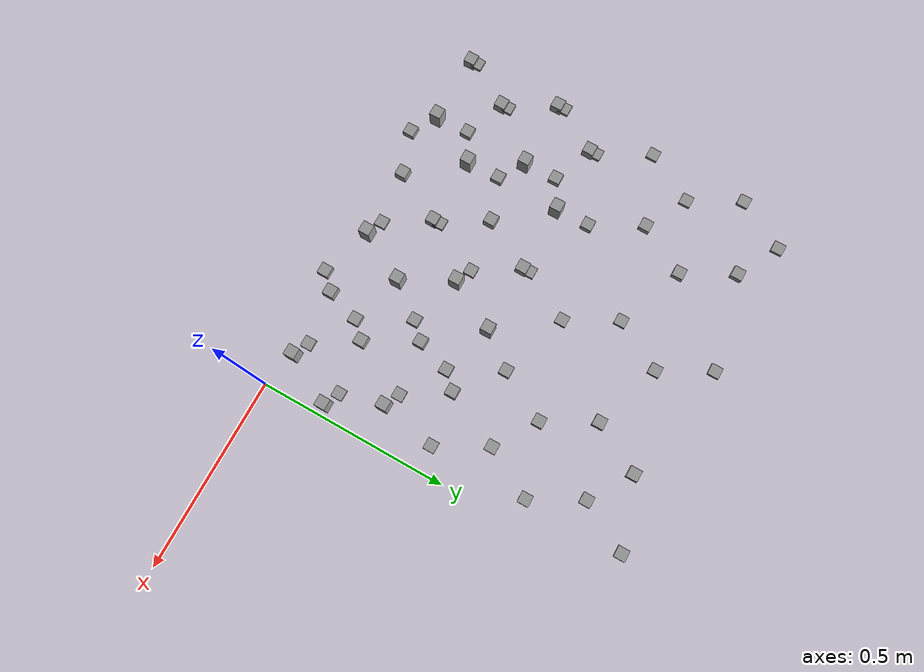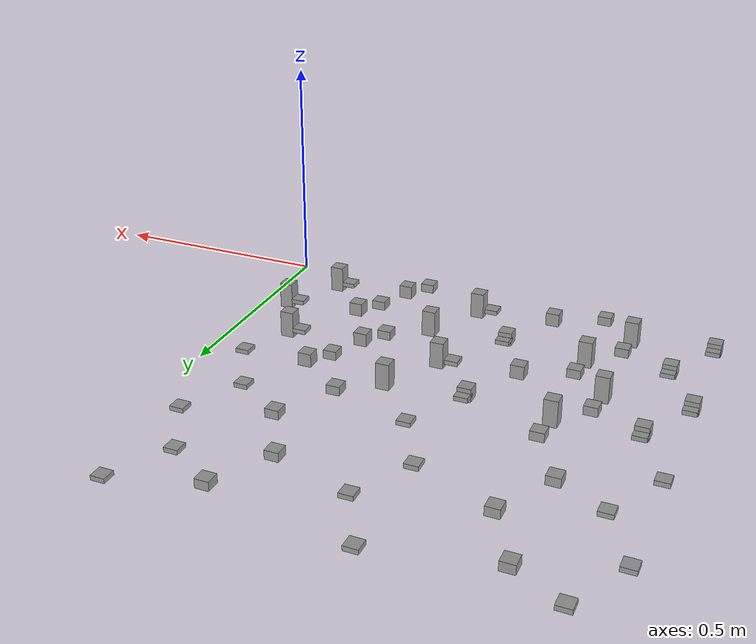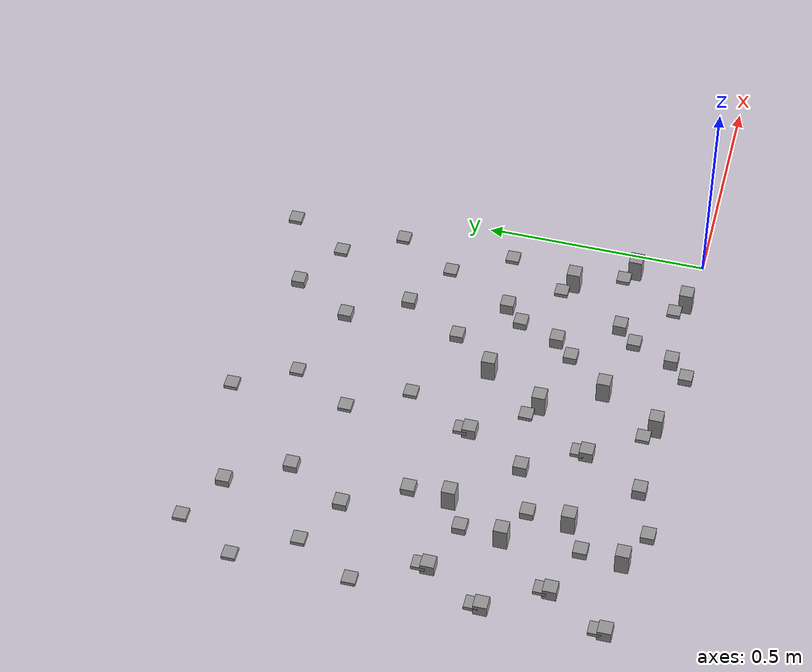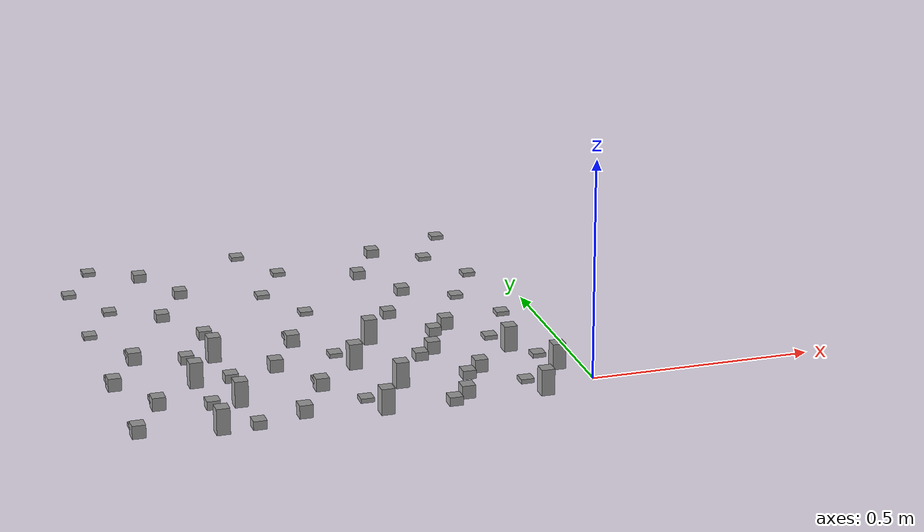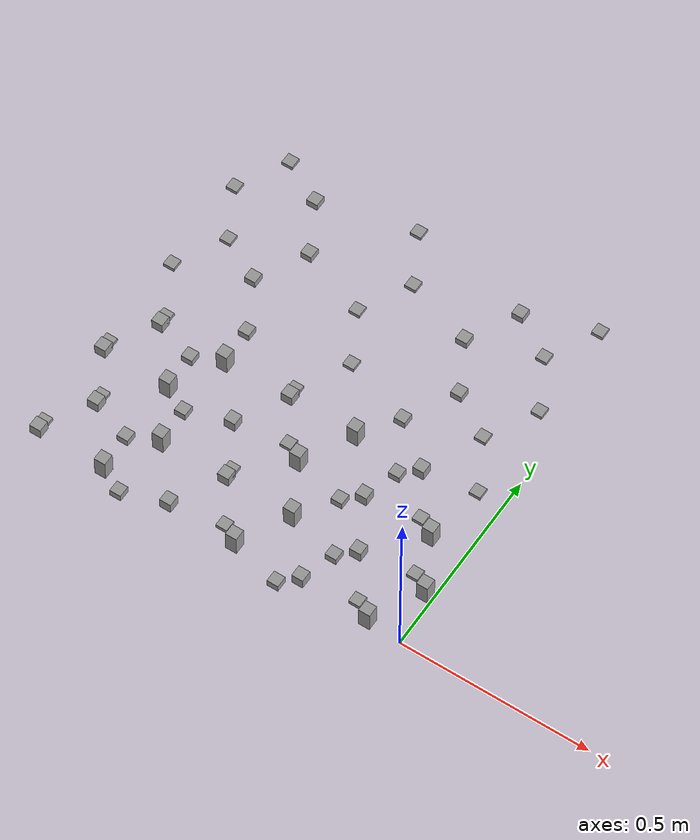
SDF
<sdf version="1.5">
 <world name="default">
  <model name="unit_box_4">
   <pose>-1 0.02 0 0 0 0</pose>
   <link name="link">
    <inertial>
     <mass>1</mass>
     <inertia><ixx>0</ixx><ixy>0</ixy><ixz>0</ixz><iyy>0</iyy><iyz>0</iyz><izz>0</izz></inertia>
    </inertial>
    <collision name="collision"><geometry><box><size>0.03 0.03 0.03</size></box></geometry></collision>
    <visual name="visual">
     <geometry><box><size>0.03 0.03 0.03</size></box></geometry>
     <material>
      <script><name>Gazebo/Grey</name><uri>file://media/materials/scripts/gazebo.material</uri></script>
     </material>
    </visual>
   </link>
  </model>
  <model name="unit_box_5">
   <pose>-0.93 0.15 0 0 0 0</pose>
   <link name="link">
    <inertial>
     <mass>1</mass>
     <inertia><ixx>0</ixx><ixy>0</ixy><ixz>0</ixz><iyy>0</iyy><iyz>0</iyz><izz>0</izz></inertia>
    </inertial>
    <collision name="collision"><geometry><box><size>0.03 0.03 0.03</size></box></geometry></collision>
    <visual name="visual">
     <geometry><box><size>0.03 0.03 0.03</size></box></geometry>
     <material>
      <script><name>Gazebo/Grey</name><uri>file://media/materials/scripts/gazebo.material</uri></script>
     </material>
    </visual>
   </link>
  </model>
  <model name="unit_box_6">
   <pose>-1 0.28 0 0 0 0</pose>
   <link name="link">
    <inertial>
     <mass>1</mass>
     <inertia><ixx>0</ixx><ixy>0</ixy><ixz>0</ixz><iyy>0</iyy><iyz>0</iyz><izz>0</izz></inertia>
    </inertial>
    <collision name="collision"><geometry><box><size>0.03 0.03 0.03</size></box></geometry></collision>
    <visual name="visual">
     <geometry><box><size>0.03 0.03 0.03</size></box></geometry>
     <material>
      <script><name>Gazebo/Grey</name><uri>file://media/materials/scripts/gazebo.material</uri></script>
     </material>
    </visual>
   </link>
  </model>
  <model name="unit_box_7">
   <pose>-0.93 0.41 0 0 0 0</pose>
   <link name="link">
    <inertial>
     <mass>1</mass>
     <inertia><ixx>0</ixx><ixy>0</ixy><ixz>0</ixz><iyy>0</iyy><iyz>0</iyz><izz>0</izz></inertia>
    </inertial>
    <collision name="collision"><geometry><box><size>0.03 0.03 0.03</size></box></geometry></collision>
    <visual name="visual">
     <geometry><box><size>0.03 0.03 0.03</size></box></geometry>
     <material>
      <script><name>Gazebo/Grey</name><uri>file://media/materials/scripts/gazebo.material</uri></script>
     </material>
    </visual>
   </link>
  </model>
  <model name="unit_box_12">
   <pose>-0.82 0.02 0 0 0 0</pose>
   <link name="link">
    <inertial>
     <mass>1</mass>
     <inertia><ixx>0</ixx><ixy>0</ixy><ixz>0</ixz><iyy>0</iyy><iyz>0</iyz><izz>0</izz></inertia>
    </inertial>
    <collision name="collision"><geometry><box><size>0.03 0.03 0.06</size></box></geometry></collision>
    <visual name="visual">
     <geometry><box><size>0.03 0.03 0.06</size></box></geometry>
     <material>
      <script><name>Gazebo/Grey</name><uri>file://media/materials/scripts/gazebo.material</uri></script>
     </material>
    </visual>
   </link>
  </model>
  <model name="unit_box_13">
   <pose>-0.75 0.15 0 0 0 0</pose>
   <link name="link">
    <inertial>
     <mass>1</mass>
     <inertia><ixx>0</ixx><ixy>0</ixy><ixz>0</ixz><iyy>0</iyy><iyz>0</iyz><izz>0</izz></inertia>
    </inertial>
    <collision name="collision"><geometry><box><size>0.03 0.03 0.06</size></box></geometry></collision>
    <visual name="visual">
     <geometry><box><size>0.03 0.03 0.06</size></box></geometry>
     <material>
      <script><name>Gazebo/Grey</name><uri>file://media/materials/scripts/gazebo.material</uri></script>
     </material>
    </visual>
   </link>
  </model>
  <model name="unit_box_14">
   <pose>-0.82 0.28 0 0 0 0</pose>
   <link name="link">
    <inertial>
     <mass>1</mass>
     <inertia><ixx>0</ixx><ixy>0</ixy><ixz>0</ixz><iyy>0</iyy><iyz>0</iyz><izz>0</izz></inertia>
    </inertial>
    <collision name="collision"><geometry><box><size>0.03 0.03 0.06</size></box></geometry></collision>
    <visual name="visual">
     <geometry><box><size>0.03 0.03 0.06</size></box></geometry>
     <material>
      <script><name>Gazebo/Grey</name><uri>file://media/materials/scripts/gazebo.material</uri></script>
     </material>
    </visual>
   </link>
  </model>
  <model name="unit_box_15">
   <pose>-0.75 0.41 0 0 0 0</pose>
   <link name="link">
    <inertial>
     <mass>1</mass>
     <inertia><ixx>0</ixx><ixy>0</ixy><ixz>0</ixz><iyy>0</iyy><iyz>0</iyz><izz>0</izz></inertia>
    </inertial>
    <collision name="collision"><geometry><box><size>0.03 0.03 0.06</size></box></geometry></collision>
    <visual name="visual">
     <geometry><box><size>0.03 0.03 0.06</size></box></geometry>
     <material>
      <script><name>Gazebo/Grey</name><uri>file://media/materials/scripts/gazebo.material</uri></script>
     </material>
    </visual>
   </link>
  </model>
  <model name="unit_box_20">
   <pose>-0.64 0.02 0 0 0 0</pose>
   <link name="link">
    <inertial>
     <mass>1</mass>
     <inertia><ixx>0</ixx><ixy>0</ixy><ixz>0</ixz><iyy>0</iyy><iyz>0</iyz><izz>0</izz></inertia>
    </inertial>
    <collision name="collision"><geometry><box><size>0.03 0.03 0.03</size></box></geometry></collision>
    <visual name="visual">
     <geometry><box><size>0.03 0.03 0.03</size></box></geometry>
     <material>
      <script><name>Gazebo/Grey</name><uri>file://media/materials/scripts/gazebo.material</uri></script>
     </material>
    </visual>
   </link>
  </model>
  <model name="unit_box_21">
   <pose>-0.57 0.15 0 0 0 0</pose>
   <link name="link">
    <inertial>
     <mass>1</mass>
     <inertia><ixx>0</ixx><ixy>0</ixy><ixz>0</ixz><iyy>0</iyy><iyz>0</iyz><izz>0</izz></inertia>
    </inertial>
    <collision name="collision"><geometry><box><size>0.03 0.03 0.03</size></box></geometry></collision>
    <visual name="visual">
     <geometry><box><size>0.03 0.03 0.03</size></box></geometry>
     <material>
      <script><name>Gazebo/Grey</name><uri>file://media/materials/scripts/gazebo.material</uri></script>
     </material>
    </visual>
   </link>
  </model>
  <model name="unit_box_22">
   <pose>-0.64 0.28 0 0 0 0</pose>
   <link name="link">
    <inertial>
     <mass>1</mass>
     <inertia><ixx>0</ixx><ixy>0</ixy><ixz>0</ixz><iyy>0</iyy><iyz>0</iyz><izz>0</izz></inertia>
    </inertial>
    <collision name="collision"><geometry><box><size>0.03 0.03 0.03</size></box></geometry></collision>
    <visual name="visual">
     <geometry><box><size>0.03 0.03 0.03</size></box></geometry>
     <material>
      <script><name>Gazebo/Grey</name><uri>file://media/materials/scripts/gazebo.material</uri></script>
     </material>
    </visual>
   </link>
  </model>
  <model name="unit_box_23">
   <pose>-0.57 0.41 0 0 0 0</pose>
   <link name="link">
    <inertial>
     <mass>1</mass>
     <inertia><ixx>0</ixx><ixy>0</ixy><ixz>0</ixz><iyy>0</iyy><iyz>0</iyz><izz>0</izz></inertia>
    </inertial>
    <collision name="collision"><geometry><box><size>0.03 0.03 0.03</size></box></geometry></collision>
    <visual name="visual">
     <geometry><box><size>0.03 0.03 0.03</size></box></geometry>
     <material>
      <script><name>Gazebo/Grey</name><uri>file://media/materials/scripts/gazebo.material</uri></script>
     </material>
    </visual>
   </link>
  </model>
  <model name="unit_box_28">
   <pose>-0.46 0.02 0 0 0 0</pose>
   <link name="link">
    <inertial>
     <mass>1</mass>
     <inertia><ixx>0</ixx><ixy>0</ixy><ixz>0</ixz><iyy>0</iyy><iyz>0</iyz><izz>0</izz></inertia>
    </inertial>
    <collision name="collision"><geometry><box><size>0.03 0.03 0.06</size></box></geometry></collision>
    <visual name="visual">
     <geometry><box><size>0.03 0.03 0.06</size></box></geometry>
     <material>
      <script><name>Gazebo/Grey</name><uri>file://media/materials/scripts/gazebo.material</uri></script>
     </material>
    </visual>
   </link>
  </model>
  <model name="unit_box_29">
   <pose>-0.39 0.15 0 0 0 0</pose>
   <link name="link">
    <inertial>
     <mass>1</mass>
     <inertia><ixx>0</ixx><ixy>0</ixy><ixz>0</ixz><iyy>0</iyy><iyz>0</iyz><izz>0</izz></inertia>
    </inertial>
    <collision name="collision"><geometry><box><size>0.03 0.03 0.06</size></box></geometry></collision>
    <visual name="visual">
     <geometry><box><size>0.03 0.03 0.06</size></box></geometry>
     <material>
      <script><name>Gazebo/Grey</name><uri>file://media/materials/scripts/gazebo.material</uri></script>
     </material>
    </visual>
   </link>
  </model>
  <model name="unit_box_30">
   <pose>-0.46 0.28 0 0 0 0</pose>
   <link name="link">
    <inertial>
     <mass>1</mass>
     <inertia><ixx>0</ixx><ixy>0</ixy><ixz>0</ixz><iyy>0</iyy><iyz>0</iyz><izz>0</izz></inertia>
    </inertial>
    <collision name="collision"><geometry><box><size>0.03 0.03 0.06</size></box></geometry></collision>
    <visual name="visual">
     <geometry><box><size>0.03 0.03 0.06</size></box></geometry>
     <material>
      <script><name>Gazebo/Grey</name><uri>file://media/materials/scripts/gazebo.material</uri></script>
     </material>
    </visual>
   </link>
  </model>
  <model name="unit_box_31">
   <pose>-0.39 0.41 0 0 0 0</pose>
   <link name="link">
    <inertial>
     <mass>1</mass>
     <inertia><ixx>0</ixx><ixy>0</ixy><ixz>0</ixz><iyy>0</iyy><iyz>0</iyz><izz>0</izz></inertia>
    </inertial>
    <collision name="collision"><geometry><box><size>0.03 0.03 0.06</size></box></geometry></collision>
    <visual name="visual">
     <geometry><box><size>0.03 0.03 0.06</size></box></geometry>
     <material>
      <script><name>Gazebo/Grey</name><uri>file://media/materials/scripts/gazebo.material</uri></script>
     </material>
    </visual>
   </link>
  </model>
  <model name="unit_box_36">
   <pose>-0.28 0.02 0 0 0 0</pose>
   <link name="link">
    <inertial>
     <mass>1</mass>
     <inertia><ixx>0</ixx><ixy>0</ixy><ixz>0</ixz><iyy>0</iyy><iyz>0</iyz><izz>0</izz></inertia>
    </inertial>
    <collision name="collision"><geometry><box><size>0.03 0.03 0.03</size></box></geometry></collision>
    <visual name="visual">
     <geometry><box><size>0.03 0.03 0.03</size></box></geometry>
     <material>
      <script><name>Gazebo/Grey</name><uri>file://media/materials/scripts/gazebo.material</uri></script>
     </material>
    </visual>
   </link>
  </model>
  <model name="unit_box_37">
   <pose>-0.21 0.15 0 0 0 0</pose>
   <link name="link">
    <inertial>
     <mass>1</mass>
     <inertia><ixx>0</ixx><ixy>0</ixy><ixz>0</ixz><iyy>0</iyy><iyz>0</iyz><izz>0</izz></inertia>
    </inertial>
    <collision name="collision"><geometry><box><size>0.03 0.03 0.03</size></box></geometry></collision>
    <visual name="visual">
     <geometry><box><size>0.03 0.03 0.03</size></box></geometry>
     <material>
      <script><name>Gazebo/Grey</name><uri>file://media/materials/scripts/gazebo.material</uri></script>
     </material>
    </visual>
   </link>
  </model>
  <model name="unit_box_38">
   <pose>-0.28 0.28 0 0 0 0</pose>
   <link name="link">
    <inertial>
     <mass>1</mass>
     <inertia><ixx>0</ixx><ixy>0</ixy><ixz>0</ixz><iyy>0</iyy><iyz>0</iyz><izz>0</izz></inertia>
    </inertial>
    <collision name="collision"><geometry><box><size>0.03 0.03 0.03</size></box></geometry></collision>
    <visual name="visual">
     <geometry><box><size>0.03 0.03 0.03</size></box></geometry>
     <material>
      <script><name>Gazebo/Grey</name><uri>file://media/materials/scripts/gazebo.material</uri></script>
     </material>
    </visual>
   </link>
  </model>
  <model name="unit_box_39">
   <pose>-0.21 0.41 0 0 0 0</pose>
   <link name="link">
    <inertial>
     <mass>1</mass>
     <inertia><ixx>0</ixx><ixy>0</ixy><ixz>0</ixz><iyy>0</iyy><iyz>0</iyz><izz>0</izz></inertia>
    </inertial>
    <collision name="collision"><geometry><box><size>0.03 0.03 0.03</size></box></geometry></collision>
    <visual name="visual">
     <geometry><box><size>0.03 0.03 0.03</size></box></geometry>
     <material>
      <script><name>Gazebo/Grey</name><uri>file://media/materials/scripts/gazebo.material</uri></script>
     </material>
    </visual>
   </link>
  </model>
  <model name="unit_box_44">
   <pose>-0.0999999999999998 0.02 0 0 0 0</pose>
   <link name="link">
    <inertial>
     <mass>1</mass>
     <inertia><ixx>0</ixx><ixy>0</ixy><ixz>0</ixz><iyy>0</iyy><iyz>0</iyz><izz>0</izz></inertia>
    </inertial>
    <collision name="collision"><geometry><box><size>0.03 0.03 0.06</size></box></geometry></collision>
    <visual name="visual">
     <geometry><box><size>0.03 0.03 0.06</size></box></geometry>
     <material>
      <script><name>Gazebo/Grey</name><uri>file://media/materials/scripts/gazebo.material</uri></script>
     </material>
    </visual>
   </link>
  </model>
  <model name="unit_box_45">
   <pose>-0.0299999999999998 0.15 0 0 0 0</pose>
   <link name="link">
    <inertial>
     <mass>1</mass>
     <inertia><ixx>0</ixx><ixy>0</ixy><ixz>0</ixz><iyy>0</iyy><iyz>0</iyz><izz>0</izz></inertia>
    </inertial>
    <collision name="collision"><geometry><box><size>0.03 0.03 0.06</size></box></geometry></collision>
    <visual name="visual">
     <geometry><box><size>0.03 0.03 0.06</size></box></geometry>
     <material>
      <script><name>Gazebo/Grey</name><uri>file://media/materials/scripts/gazebo.material</uri></script>
     </material>
    </visual>
   </link>
  </model>
  <model name="unit_box_46">
   <pose>-0.0999999999999998 0.28 0 0 0 0</pose>
   <link name="link">
    <inertial>
     <mass>1</mass>
     <inertia><ixx>0</ixx><ixy>0</ixy><ixz>0</ixz><iyy>0</iyy><iyz>0</iyz><izz>0</izz></inertia>
    </inertial>
    <collision name="collision"><geometry><box><size>0.03 0.03 0.06</size></box></geometry></collision>
    <visual name="visual">
     <geometry><box><size>0.03 0.03 0.06</size></box></geometry>
     <material>
      <script><name>Gazebo/Grey</name><uri>file://media/materials/scripts/gazebo.material</uri></script>
     </material>
    </visual>
   </link>
  </model>
  <model name="unit_box_8">
   <pose>-1 0.0400000000000001 0 0 0 0</pose>
   <link name="link">
    <inertial>
     <mass>1</mass>
     <inertia><ixx>0</ixx><ixy>0</ixy><ixz>0</ixz><iyy>0</iyy><iyz>0</iyz><izz>0</izz></inertia>
    </inertial>
    <collision name="collision"><geometry><box><size>0.03 0.03 0.01</size></box></geometry></collision>
    <visual name="visual">
     <geometry><box><size>0.03 0.03 0.01</size></box></geometry>
     <material>
      <script><name>Gazebo/Grey</name><uri>file://media/materials/scripts/gazebo.material</uri></script>
     </material>
    </visual>
   </link>
  </model>
  <model name="unit_box_9">
   <pose>-0.93 0.17 0 0 0 0</pose>
   <link name="link">
    <inertial>
     <mass>1</mass>
     <inertia><ixx>0</ixx><ixy>0</ixy><ixz>0</ixz><iyy>0</iyy><iyz>0</iyz><izz>0</izz></inertia>
    </inertial>
    <collision name="collision"><geometry><box><size>0.03 0.03 0.01</size></box></geometry></collision>
    <visual name="visual">
     <geometry><box><size>0.03 0.03 0.01</size></box></geometry>
     <material>
      <script><name>Gazebo/Grey</name><uri>file://media/materials/scripts/gazebo.material</uri></script>
     </material>
    </visual>
   </link>
  </model>
  <model name="unit_box_10">
   <pose>-1 0.3 0 0 0 0</pose>
   <link name="link">
    <inertial>
     <mass>1</mass>
     <inertia><ixx>0</ixx><ixy>0</ixy><ixz>0</ixz><iyy>0</iyy><iyz>0</iyz><izz>0</izz></inertia>
    </inertial>
    <collision name="collision"><geometry><box><size>0.03 0.03 0.01</size></box></geometry></collision>
    <visual name="visual">
     <geometry><box><size>0.03 0.03 0.01</size></box></geometry>
     <material>
      <script><name>Gazebo/Grey</name><uri>file://media/materials/scripts/gazebo.material</uri></script>
     </material>
    </visual>
   </link>
  </model>
  <model name="unit_box_11">
   <pose>-0.93 0.43 0 0 0 0</pose>
   <link name="link">
    <inertial>
     <mass>1</mass>
     <inertia><ixx>0</ixx><ixy>0</ixy><ixz>0</ixz><iyy>0</iyy><iyz>0</iyz><izz>0</izz></inertia>
    </inertial>
    <collision name="collision"><geometry><box><size>0.03 0.03 0.01</size></box></geometry></collision>
    <visual name="visual">
     <geometry><box><size>0.03 0.03 0.01</size></box></geometry>
     <material>
      <script><name>Gazebo/Grey</name><uri>file://media/materials/scripts/gazebo.material</uri></script>
     </material>
    </visual>
   </link>
  </model>
  <model name="unit_box_12">
   <pose>-1 0.56 0 0 0 0</pose>
   <link name="link">
    <inertial>
     <mass>1</mass>
     <inertia><ixx>0</ixx><ixy>0</ixy><ixz>0</ixz><iyy>0</iyy><iyz>0</iyz><izz>0</izz></inertia>
    </inertial>
    <collision name="collision"><geometry><box><size>0.03 0.03 0.01</size></box></geometry></collision>
    <visual name="visual">
     <geometry><box><size>0.03 0.03 0.01</size></box></geometry>
     <material>
      <script><name>Gazebo/Grey</name><uri>file://media/materials/scripts/gazebo.material</uri></script>
     </material>
    </visual>
   </link>
  </model>
  <model name="unit_box_13">
   <pose>-0.93 0.69 0 0 0 0</pose>
   <link name="link">
    <inertial>
     <mass>1</mass>
     <inertia><ixx>0</ixx><ixy>0</ixy><ixz>0</ixz><iyy>0</iyy><iyz>0</iyz><izz>0</izz></inertia>
    </inertial>
    <collision name="collision"><geometry><box><size>0.03 0.03 0.01</size></box></geometry></collision>
    <visual name="visual">
     <geometry><box><size>0.03 0.03 0.01</size></box></geometry>
     <material>
      <script><name>Gazebo/Grey</name><uri>file://media/materials/scripts/gazebo.material</uri></script>
     </material>
    </visual>
   </link>
  </model>
  <model name="unit_box_14">
   <pose>-1 0.82 0 0 0 0</pose>
   <link name="link">
    <inertial>
     <mass>1</mass>
     <inertia><ixx>0</ixx><ixy>0</ixy><ixz>0</ixz><iyy>0</iyy><iyz>0</iyz><izz>0</izz></inertia>
    </inertial>
    <collision name="collision"><geometry><box><size>0.03 0.03 0.01</size></box></geometry></collision>
    <visual name="visual">
     <geometry><box><size>0.03 0.03 0.01</size></box></geometry>
     <material>
      <script><name>Gazebo/Grey</name><uri>file://media/materials/scripts/gazebo.material</uri></script>
     </material>
    </visual>
   </link>
  </model>
  <model name="unit_box_15">
   <pose>-0.93 0.95 0 0 0 0</pose>
   <link name="link">
    <inertial>
     <mass>1</mass>
     <inertia><ixx>0</ixx><ixy>0</ixy><ixz>0</ixz><iyy>0</iyy><iyz>0</iyz><izz>0</izz></inertia>
    </inertial>
    <collision name="collision"><geometry><box><size>0.03 0.03 0.01</size></box></geometry></collision>
    <visual name="visual">
     <geometry><box><size>0.03 0.03 0.01</size></box></geometry>
     <material>
      <script><name>Gazebo/Grey</name><uri>file://media/materials/scripts/gazebo.material</uri></script>
     </material>
    </visual>
   </link>
  </model>
  <model name="unit_box_23">
   <pose>-0.75 -0.02 0 0 0 0</pose>
   <link name="link">
    <inertial>
     <mass>1</mass>
     <inertia><ixx>0</ixx><ixy>0</ixy><ixz>0</ixz><iyy>0</iyy><iyz>0</iyz><izz>0</izz></inertia>
    </inertial>
    <collision name="collision"><geometry><box><size>0.03 0.03 0.02</size></box></geometry></collision>
    <visual name="visual">
     <geometry><box><size>0.03 0.03 0.02</size></box></geometry>
     <material>
      <script><name>Gazebo/Grey</name><uri>file://media/materials/scripts/gazebo.material</uri></script>
     </material>
    </visual>
   </link>
  </model>
  <model name="unit_box_24">
   <pose>-0.82 0.11 0 0 0 0</pose>
   <link name="link">
    <inertial>
     <mass>1</mass>
     <inertia><ixx>0</ixx><ixy>0</ixy><ixz>0</ixz><iyy>0</iyy><iyz>0</iyz><izz>0</izz></inertia>
    </inertial>
    <collision name="collision"><geometry><box><size>0.03 0.03 0.02</size></box></geometry></collision>
    <visual name="visual">
     <geometry><box><size>0.03 0.03 0.02</size></box></geometry>
     <material>
      <script><name>Gazebo/Grey</name><uri>file://media/materials/scripts/gazebo.material</uri></script>
     </material>
    </visual>
   </link>
  </model>
  <model name="unit_box_25">
   <pose>-0.75 0.24 0 0 0 0</pose>
   <link name="link">
    <inertial>
     <mass>1</mass>
     <inertia><ixx>0</ixx><ixy>0</ixy><ixz>0</ixz><iyy>0</iyy><iyz>0</iyz><izz>0</izz></inertia>
    </inertial>
    <collision name="collision"><geometry><box><size>0.03 0.03 0.02</size></box></geometry></collision>
    <visual name="visual">
     <geometry><box><size>0.03 0.03 0.02</size></box></geometry>
     <material>
      <script><name>Gazebo/Grey</name><uri>file://media/materials/scripts/gazebo.material</uri></script>
     </material>
    </visual>
   </link>
  </model>
  <model name="unit_box_26">
   <pose>-0.82 0.37 0 0 0 0</pose>
   <link name="link">
    <inertial>
     <mass>1</mass>
     <inertia><ixx>0</ixx><ixy>0</ixy><ixz>0</ixz><iyy>0</iyy><iyz>0</iyz><izz>0</izz></inertia>
    </inertial>
    <collision name="collision"><geometry><box><size>0.03 0.03 0.02</size></box></geometry></collision>
    <visual name="visual">
     <geometry><box><size>0.03 0.03 0.02</size></box></geometry>
     <material>
      <script><name>Gazebo/Grey</name><uri>file://media/materials/scripts/gazebo.material</uri></script>
     </material>
    </visual>
   </link>
  </model>
  <model name="unit_box_27">
   <pose>-0.75 0.5 0 0 0 0</pose>
   <link name="link">
    <inertial>
     <mass>1</mass>
     <inertia><ixx>0</ixx><ixy>0</ixy><ixz>0</ixz><iyy>0</iyy><iyz>0</iyz><izz>0</izz></inertia>
    </inertial>
    <collision name="collision"><geometry><box><size>0.03 0.03 0.02</size></box></geometry></collision>
    <visual name="visual">
     <geometry><box><size>0.03 0.03 0.02</size></box></geometry>
     <material>
      <script><name>Gazebo/Grey</name><uri>file://media/materials/scripts/gazebo.material</uri></script>
     </material>
    </visual>
   </link>
  </model>
  <model name="unit_box_28">
   <pose>-0.82 0.63 0 0 0 0</pose>
   <link name="link">
    <inertial>
     <mass>1</mass>
     <inertia><ixx>0</ixx><ixy>0</ixy><ixz>0</ixz><iyy>0</iyy><iyz>0</iyz><izz>0</izz></inertia>
    </inertial>
    <collision name="collision"><geometry><box><size>0.03 0.03 0.02</size></box></geometry></collision>
    <visual name="visual">
     <geometry><box><size>0.03 0.03 0.02</size></box></geometry>
     <material>
      <script><name>Gazebo/Grey</name><uri>file://media/materials/scripts/gazebo.material</uri></script>
     </material>
    </visual>
   </link>
  </model>
  <model name="unit_box_29">
   <pose>-0.75 0.76 0 0 0 0</pose>
   <link name="link">
    <inertial>
     <mass>1</mass>
     <inertia><ixx>0</ixx><ixy>0</ixy><ixz>0</ixz><iyy>0</iyy><iyz>0</iyz><izz>0</izz></inertia>
    </inertial>
    <collision name="collision"><geometry><box><size>0.03 0.03 0.02</size></box></geometry></collision>
    <visual name="visual">
     <geometry><box><size>0.03 0.03 0.02</size></box></geometry>
     <material>
      <script><name>Gazebo/Grey</name><uri>file://media/materials/scripts/gazebo.material</uri></script>
     </material>
    </visual>
   </link>
  </model>
  <model name="unit_box_30">
   <pose>-0.82 0.89 0 0 0 0</pose>
   <link name="link">
    <inertial>
     <mass>1</mass>
     <inertia><ixx>0</ixx><ixy>0</ixy><ixz>0</ixz><iyy>0</iyy><iyz>0</iyz><izz>0</izz></inertia>
    </inertial>
    <collision name="collision"><geometry><box><size>0.03 0.03 0.02</size></box></geometry></collision>
    <visual name="visual">
     <geometry><box><size>0.03 0.03 0.02</size></box></geometry>
     <material>
      <script><name>Gazebo/Grey</name><uri>file://media/materials/scripts/gazebo.material</uri></script>
     </material>
    </visual>
   </link>
  </model>
  <model name="unit_box_39">
   <pose>-0.5 0.0400000000000001 0 0 0 0</pose>
   <link name="link">
    <inertial>
     <mass>1</mass>
     <inertia><ixx>0</ixx><ixy>0</ixy><ixz>0</ixz><iyy>0</iyy><iyz>0</iyz><izz>0</izz></inertia>
    </inertial>
    <collision name="collision"><geometry><box><size>0.03 0.03 0.01</size></box></geometry></collision>
    <visual name="visual">
     <geometry><box><size>0.03 0.03 0.01</size></box></geometry>
     <material>
      <script><name>Gazebo/Grey</name><uri>file://media/materials/scripts/gazebo.material</uri></script>
     </material>
    </visual>
   </link>
  </model>
  <model name="unit_box_40">
   <pose>-0.57 0.17 0 0 0 0</pose>
   <link name="link">
    <inertial>
     <mass>1</mass>
     <inertia><ixx>0</ixx><ixy>0</ixy><ixz>0</ixz><iyy>0</iyy><iyz>0</iyz><izz>0</izz></inertia>
    </inertial>
    <collision name="collision"><geometry><box><size>0.03 0.03 0.01</size></box></geometry></collision>
    <visual name="visual">
     <geometry><box><size>0.03 0.03 0.01</size></box></geometry>
     <material>
      <script><name>Gazebo/Grey</name><uri>file://media/materials/scripts/gazebo.material</uri></script>
     </material>
    </visual>
   </link>
  </model>
  <model name="unit_box_41">
   <pose>-0.5 0.3 0 0 0 0</pose>
   <link name="link">
    <inertial>
     <mass>1</mass>
     <inertia><ixx>0</ixx><ixy>0</ixy><ixz>0</ixz><iyy>0</iyy><iyz>0</iyz><izz>0</izz></inertia>
    </inertial>
    <collision name="collision"><geometry><box><size>0.03 0.03 0.01</size></box></geometry></collision>
    <visual name="visual">
     <geometry><box><size>0.03 0.03 0.01</size></box></geometry>
     <material>
      <script><name>Gazebo/Grey</name><uri>file://media/materials/scripts/gazebo.material</uri></script>
     </material>
    </visual>
   </link>
  </model>
  <model name="unit_box_42">
   <pose>-0.57 0.43 0 0 0 0</pose>
   <link name="link">
    <inertial>
     <mass>1</mass>
     <inertia><ixx>0</ixx><ixy>0</ixy><ixz>0</ixz><iyy>0</iyy><iyz>0</iyz><izz>0</izz></inertia>
    </inertial>
    <collision name="collision"><geometry><box><size>0.03 0.03 0.01</size></box></geometry></collision>
    <visual name="visual">
     <geometry><box><size>0.03 0.03 0.01</size></box></geometry>
     <material>
      <script><name>Gazebo/Grey</name><uri>file://media/materials/scripts/gazebo.material</uri></script>
     </material>
    </visual>
   </link>
  </model>
  <model name="unit_box_43">
   <pose>-0.5 0.56 0 0 0 0</pose>
   <link name="link">
    <inertial>
     <mass>1</mass>
     <inertia><ixx>0</ixx><ixy>0</ixy><ixz>0</ixz><iyy>0</iyy><iyz>0</iyz><izz>0</izz></inertia>
    </inertial>
    <collision name="collision"><geometry><box><size>0.03 0.03 0.01</size></box></geometry></collision>
    <visual name="visual">
     <geometry><box><size>0.03 0.03 0.01</size></box></geometry>
     <material>
      <script><name>Gazebo/Grey</name><uri>file://media/materials/scripts/gazebo.material</uri></script>
     </material>
    </visual>
   </link>
  </model>
  <model name="unit_box_44">
   <pose>-0.57 0.69 0 0 0 0</pose>
   <link name="link">
    <inertial>
     <mass>1</mass>
     <inertia><ixx>0</ixx><ixy>0</ixy><ixz>0</ixz><iyy>0</iyy><iyz>0</iyz><izz>0</izz></inertia>
    </inertial>
    <collision name="collision"><geometry><box><size>0.03 0.03 0.01</size></box></geometry></collision>
    <visual name="visual">
     <geometry><box><size>0.03 0.03 0.01</size></box></geometry>
     <material>
      <script><name>Gazebo/Grey</name><uri>file://media/materials/scripts/gazebo.material</uri></script>
     </material>
    </visual>
   </link>
  </model>
  <model name="unit_box_45">
   <pose>-0.5 0.82 0 0 0 0</pose>
   <link name="link">
    <inertial>
     <mass>1</mass>
     <inertia><ixx>0</ixx><ixy>0</ixy><ixz>0</ixz><iyy>0</iyy><iyz>0</iyz><izz>0</izz></inertia>
    </inertial>
    <collision name="collision"><geometry><box><size>0.03 0.03 0.01</size></box></geometry></collision>
    <visual name="visual">
     <geometry><box><size>0.03 0.03 0.01</size></box></geometry>
     <material>
      <script><name>Gazebo/Grey</name><uri>file://media/materials/scripts/gazebo.material</uri></script>
     </material>
    </visual>
   </link>
  </model>
  <model name="unit_box_46">
   <pose>-0.57 0.95 0 0 0 0</pose>
   <link name="link">
    <inertial>
     <mass>1</mass>
     <inertia><ixx>0</ixx><ixy>0</ixy><ixz>0</ixz><iyy>0</iyy><iyz>0</iyz><izz>0</izz></inertia>
    </inertial>
    <collision name="collision"><geometry><box><size>0.03 0.03 0.01</size></box></geometry></collision>
    <visual name="visual">
     <geometry><box><size>0.03 0.03 0.01</size></box></geometry>
     <material>
      <script><name>Gazebo/Grey</name><uri>file://media/materials/scripts/gazebo.material</uri></script>
     </material>
    </visual>
   </link>
  </model>
  <model name="unit_box_54">
   <pose>-0.32 -0.02 0 0 0 0</pose>
   <link name="link">
    <inertial>
     <mass>1</mass>
     <inertia><ixx>0</ixx><ixy>0</ixy><ixz>0</ixz><iyy>0</iyy><iyz>0</iyz><izz>0</izz></inertia>
    </inertial>
    <collision name="collision"><geometry><box><size>0.03 0.03 0.02</size></box></geometry></collision>
    <visual name="visual">
     <geometry><box><size>0.03 0.03 0.02</size></box></geometry>
     <material>
      <script><name>Gazebo/Grey</name><uri>file://media/materials/scripts/gazebo.material</uri></script>
     </material>
    </visual>
   </link>
  </model>
  <model name="unit_box_55">
   <pose>-0.25 0.11 0 0 0 0</pose>
   <link name="link">
    <inertial>
     <mass>1</mass>
     <inertia><ixx>0</ixx><ixy>0</ixy><ixz>0</ixz><iyy>0</iyy><iyz>0</iyz><izz>0</izz></inertia>
    </inertial>
    <collision name="collision"><geometry><box><size>0.03 0.03 0.02</size></box></geometry></collision>
    <visual name="visual">
     <geometry><box><size>0.03 0.03 0.02</size></box></geometry>
     <material>
      <script><name>Gazebo/Grey</name><uri>file://media/materials/scripts/gazebo.material</uri></script>
     </material>
    </visual>
   </link>
  </model>
  <model name="unit_box_56">
   <pose>-0.32 0.24 0 0 0 0</pose>
   <link name="link">
    <inertial>
     <mass>1</mass>
     <inertia><ixx>0</ixx><ixy>0</ixy><ixz>0</ixz><iyy>0</iyy><iyz>0</iyz><izz>0</izz></inertia>
    </inertial>
    <collision name="collision"><geometry><box><size>0.03 0.03 0.02</size></box></geometry></collision>
    <visual name="visual">
     <geometry><box><size>0.03 0.03 0.02</size></box></geometry>
     <material>
      <script><name>Gazebo/Grey</name><uri>file://media/materials/scripts/gazebo.material</uri></script>
     </material>
    </visual>
   </link>
  </model>
  <model name="unit_box_57">
   <pose>-0.25 0.37 0 0 0 0</pose>
   <link name="link">
    <inertial>
     <mass>1</mass>
     <inertia><ixx>0</ixx><ixy>0</ixy><ixz>0</ixz><iyy>0</iyy><iyz>0</iyz><izz>0</izz></inertia>
    </inertial>
    <collision name="collision"><geometry><box><size>0.03 0.03 0.02</size></box></geometry></collision>
    <visual name="visual">
     <geometry><box><size>0.03 0.03 0.02</size></box></geometry>
     <material>
      <script><name>Gazebo/Grey</name><uri>file://media/materials/scripts/gazebo.material</uri></script>
     </material>
    </visual>
   </link>
  </model>
  <model name="unit_box_58">
   <pose>-0.32 0.5 0 0 0 0</pose>
   <link name="link">
    <inertial>
     <mass>1</mass>
     <inertia><ixx>0</ixx><ixy>0</ixy><ixz>0</ixz><iyy>0</iyy><iyz>0</iyz><izz>0</izz></inertia>
    </inertial>
    <collision name="collision"><geometry><box><size>0.03 0.03 0.02</size></box></geometry></collision>
    <visual name="visual">
     <geometry><box><size>0.03 0.03 0.02</size></box></geometry>
     <material>
      <script><name>Gazebo/Grey</name><uri>file://media/materials/scripts/gazebo.material</uri></script>
     </material>
    </visual>
   </link>
  </model>
  <model name="unit_box_59">
   <pose>-0.25 0.63 0 0 0 0</pose>
   <link name="link">
    <inertial>
     <mass>1</mass>
     <inertia><ixx>0</ixx><ixy>0</ixy><ixz>0</ixz><iyy>0</iyy><iyz>0</iyz><izz>0</izz></inertia>
    </inertial>
    <collision name="collision"><geometry><box><size>0.03 0.03 0.02</size></box></geometry></collision>
    <visual name="visual">
     <geometry><box><size>0.03 0.03 0.02</size></box></geometry>
     <material>
      <script><name>Gazebo/Grey</name><uri>file://media/materials/scripts/gazebo.material</uri></script>
     </material>
    </visual>
   </link>
  </model>
  <model name="unit_box_60">
   <pose>-0.32 0.76 0 0 0 0</pose>
   <link name="link">
    <inertial>
     <mass>1</mass>
     <inertia><ixx>0</ixx><ixy>0</ixy><ixz>0</ixz><iyy>0</iyy><iyz>0</iyz><izz>0</izz></inertia>
    </inertial>
    <collision name="collision"><geometry><box><size>0.03 0.03 0.02</size></box></geometry></collision>
    <visual name="visual">
     <geometry><box><size>0.03 0.03 0.02</size></box></geometry>
     <material>
      <script><name>Gazebo/Grey</name><uri>file://media/materials/scripts/gazebo.material</uri></script>
     </material>
    </visual>
   </link>
  </model>
  <model name="unit_box_61">
   <pose>-0.25 0.89 0 0 0 0</pose>
   <link name="link">
    <inertial>
     <mass>1</mass>
     <inertia><ixx>0</ixx><ixy>0</ixy><ixz>0</ixz><iyy>0</iyy><iyz>0</iyz><izz>0</izz></inertia>
    </inertial>
    <collision name="collision"><geometry><box><size>0.03 0.03 0.02</size></box></geometry></collision>
    <visual name="visual">
     <geometry><box><size>0.03 0.03 0.02</size></box></geometry>
     <material>
      <script><name>Gazebo/Grey</name><uri>file://media/materials/scripts/gazebo.material</uri></script>
     </material>
    </visual>
   </link>
  </model>
  <model name="unit_box_70">
   <pose>-0.14 0.0400000000000001 0 0 0 0</pose>
   <link name="link">
    <inertial>
     <mass>1</mass>
     <inertia><ixx>0</ixx><ixy>0</ixy><ixz>0</ixz><iyy>0</iyy><iyz>0</iyz><izz>0</izz></inertia>
    </inertial>
    <collision name="collision"><geometry><box><size>0.03 0.03 0.01</size></box></geometry></collision>
    <visual name="visual">
     <geometry><box><size>0.03 0.03 0.01</size></box></geometry>
     <material>
      <script><name>Gazebo/Grey</name><uri>file://media/materials/scripts/gazebo.material</uri></script>
     </material>
    </visual>
   </link>
  </model>
  <model name="unit_box_71">
   <pose>-0.0699999999999999 0.17 0 0 0 0</pose>
   <link name="link">
    <inertial>
     <mass>1</mass>
     <inertia><ixx>0</ixx><ixy>0</ixy><ixz>0</ixz><iyy>0</iyy><iyz>0</iyz><izz>0</izz></inertia>
    </inertial>
    <collision name="collision"><geometry><box><size>0.03 0.03 0.01</size></box></geometry></collision>
    <visual name="visual">
     <geometry><box><size>0.03 0.03 0.01</size></box></geometry>
     <material>
      <script><name>Gazebo/Grey</name><uri>file://media/materials/scripts/gazebo.material</uri></script>
     </material>
    </visual>
   </link>
  </model>
  <model name="unit_box_72">
   <pose>-0.14 0.3 0 0 0 0</pose>
   <link name="link">
    <inertial>
     <mass>1</mass>
     <inertia><ixx>0</ixx><ixy>0</ixy><ixz>0</ixz><iyy>0</iyy><iyz>0</iyz><izz>0</izz></inertia>
    </inertial>
    <collision name="collision"><geometry><box><size>0.03 0.03 0.01</size></box></geometry></collision>
    <visual name="visual">
     <geometry><box><size>0.03 0.03 0.01</size></box></geometry>
     <material>
      <script><name>Gazebo/Grey</name><uri>file://media/materials/scripts/gazebo.material</uri></script>
     </material>
    </visual>
   </link>
  </model>
  <model name="unit_box_73">
   <pose>-0.0699999999999999 0.43 0 0 0 0</pose>
   <link name="link">
    <inertial>
     <mass>1</mass>
     <inertia><ixx>0</ixx><ixy>0</ixy><ixz>0</ixz><iyy>0</iyy><iyz>0</iyz><izz>0</izz></inertia>
    </inertial>
    <collision name="collision"><geometry><box><size>0.03 0.03 0.01</size></box></geometry></collision>
    <visual name="visual">
     <geometry><box><size>0.03 0.03 0.01</size></box></geometry>
     <material>
      <script><name>Gazebo/Grey</name><uri>file://media/materials/scripts/gazebo.material</uri></script>
     </material>
    </visual>
   </link>
  </model>
  <model name="unit_box_74">
   <pose>-0.14 0.56 0 0 0 0</pose>
   <link name="link">
    <inertial>
     <mass>1</mass>
     <inertia><ixx>0</ixx><ixy>0</ixy><ixz>0</ixz><iyy>0</iyy><iyz>0</iyz><izz>0</izz></inertia>
    </inertial>
    <collision name="collision"><geometry><box><size>0.03 0.03 0.01</size></box></geometry></collision>
    <visual name="visual">
     <geometry><box><size>0.03 0.03 0.01</size></box></geometry>
     <material>
      <script><name>Gazebo/Grey</name><uri>file://media/materials/scripts/gazebo.material</uri></script>
     </material>
    </visual>
   </link>
  </model>
  <model name="unit_box_75">
   <pose>-0.0699999999999999 0.69 0 0 0 0</pose>
   <link name="link">
    <inertial>
     <mass>1</mass>
     <inertia><ixx>0</ixx><ixy>0</ixy><ixz>0</ixz><iyy>0</iyy><iyz>0</iyz><izz>0</izz></inertia>
    </inertial>
    <collision name="collision"><geometry><box><size>0.03 0.03 0.01</size></box></geometry></collision>
    <visual name="visual">
     <geometry><box><size>0.03 0.03 0.01</size></box></geometry>
     <material>
      <script><name>Gazebo/Grey</name><uri>file://media/materials/scripts/gazebo.material</uri></script>
     </material>
    </visual>
   </link>
  </model>
  <model name="unit_box_76">
   <pose>-0.14 0.82 0 0 0 0</pose>
   <link name="link">
    <inertial>
     <mass>1</mass>
     <inertia><ixx>0</ixx><ixy>0</ixy><ixz>0</ixz><iyy>0</iyy><iyz>0</iyz><izz>0</izz></inertia>
    </inertial>
    <collision name="collision"><geometry><box><size>0.03 0.03 0.01</size></box></geometry></collision>
    <visual name="visual">
     <geometry><box><size>0.03 0.03 0.01</size></box></geometry>
     <material>
      <script><name>Gazebo/Grey</name><uri>file://media/materials/scripts/gazebo.material</uri></script>
     </material>
    </visual>
   </link>
  </model>
  <model name="unit_box_77">
   <pose>-0.0699999999999999 0.95 0 0 0 0</pose>
   <link name="link">
    <inertial>
     <mass>1</mass>
     <inertia><ixx>0</ixx><ixy>0</ixy><ixz>0</ixz><iyy>0</iyy><iyz>0</iyz><izz>0</izz></inertia>
    </inertial>
    <collision name="collision"><geometry><box><size>0.03 0.03 0.01</size></box></geometry></collision>
    <visual name="visual">
     <geometry><box><size>0.03 0.03 0.01</size></box></geometry>
     <material>
      <script><name>Gazebo/Grey</name><uri>file://media/materials/scripts/gazebo.material</uri></script>
     </material>
    </visual>
   </link>
  </model>
  <include><uri>model://sun</uri></include>
 </world>
</sdf>
